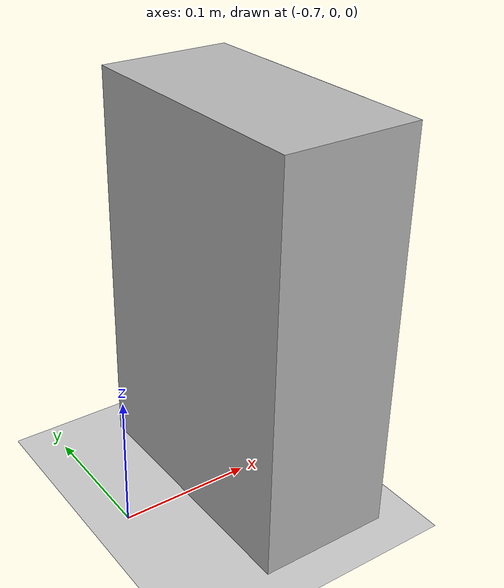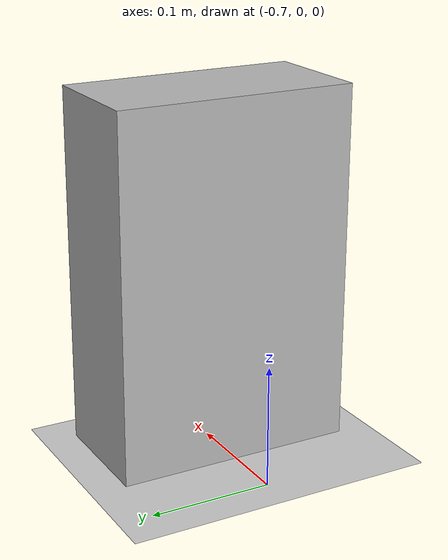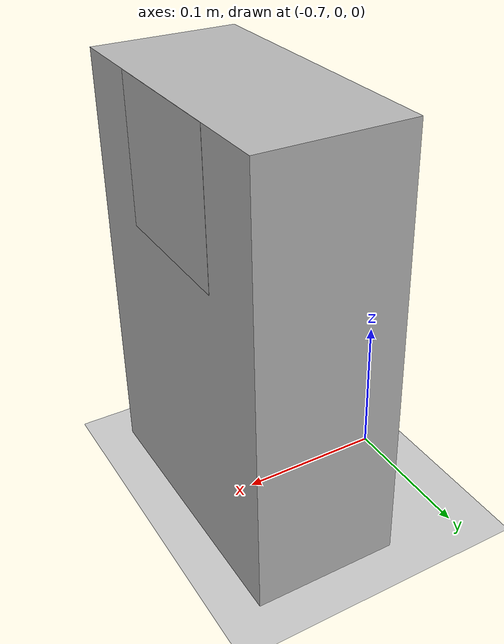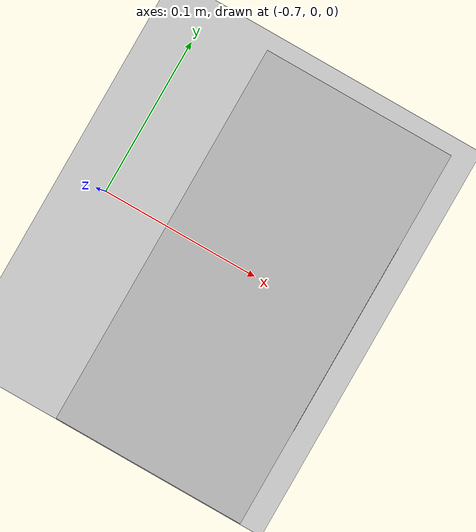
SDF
<sdf version="1.7">
 <world name="default">
  <light name="sun" type="directional">
   <pose>0 0 10 0 -0 0</pose>
   <diffuse>0.8 0.8 0.8 1</diffuse>
   <specular>0.2 0.2 0.2 1</specular>
   <attenuation>
    <range>1000</range>
    <constant>0.9</constant>
    <linear>0.01</linear>
    <quadratic>0.001</quadratic>
   </attenuation>
   <direction>-0.5 0.1 -0.9</direction>
   <spot><inner_angle>0</inner_angle><outer_angle>0</outer_angle><falloff>0</falloff></spot>
  </light>
  <model name="ground_plane">
   <static>1</static>
   <link name="link">
    <collision name="collision">
     <geometry><plane><normal>0 0 1</normal><size>100 100</size></plane></geometry>
     <surface><friction><ode><mu>100</mu><mu2>50</mu2></ode></friction></surface>
    </collision>
    <visual name="visual">
     <cast_shadows>0</cast_shadows>
     <geometry><plane><normal>0 0 1</normal><size>100 100</size></plane></geometry>
     <material>
      <script><uri>file://media/materials/scripts/gazebo.material</uri><name>Gazebo/Grey</name></script>
     </material>
    </visual>
   </link>
  </model>
  <gravity>0 0 -9.8</gravity>
  <magnetic_field>6e-06 2.3e-05 -4.2e-05</magnetic_field>
  <atmosphere type="adiabatic"/>
  <physics type="ode">
   <max_step_size>0.001</max_step_size>
   <real_time_factor>1</real_time_factor>
   <real_time_update_rate>1000</real_time_update_rate>
  </physics>
  <scene><ambient>0.4 0.4 0.4 1</ambient><background>0.7 0.7 0.7 1</background><shadows>1</shadows></scene>
  <spherical_coordinates>
   <surface_model>EARTH_WGS84</surface_model>
   <latitude_deg>0</latitude_deg>
   <longitude_deg>0</longitude_deg>
   <elevation>0</elevation>
   <heading_deg>0</heading_deg>
  </spherical_coordinates>
  <model name="aruco_marker">
   <link name="link">
    <inertial>
     <mass>1</mass>
     <inertia><ixx>0.083</ixx><ixy>0</ixy><ixz>0</ixz><iyy>0.083</iyy><iyz>0</iyz><izz>0.083</izz></inertia>
    </inertial>
    <visual name="front_visual">
     <pose>0.05005 0 0.1 0 -0 0</pose>
     <geometry><box><size>0.0001 0.1 0.1</size></box></geometry>
     <material>
      <script>
       <uri>model://aruco_marker_box/materials/scripts</uri>
       <uri>model://aruco_marker_box/materials/textures</uri>
       <name>Marker</name>
      </script>
     </material>
    </visual>
    <visual name="rear_visual">
     <pose>-5e-05 0 0 0 -0 0</pose>
     <geometry><box><size>0.1 0.2 0.3</size></box></geometry>
    </visual>
    <collision name="collision"><geometry><box><size>0.1 0.2 0.3</size></box></geometry></collision>
   </link>
   <pose>-0.600148 -0.001007 0.15 3e-06 -3e-06 -0.000118</pose>
  </model>
 </world>
</sdf>
